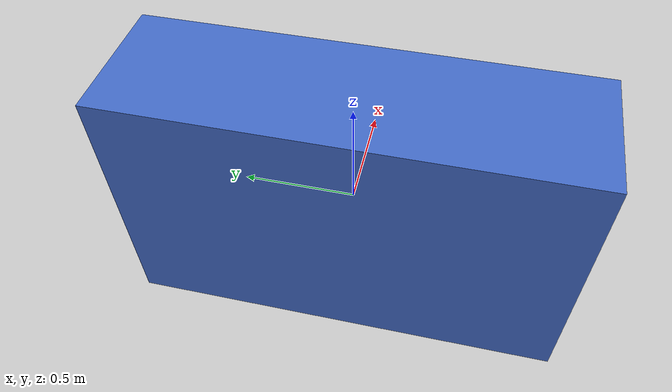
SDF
<?xml version="1.0"?>
<sdf version="1.9">
  <model name="box_obstacle">
    <static>true</static>
    <link name="obstacle_link">
      <collision name="collision">
        <geometry><box><size>0.6 2.0 1.2</size></box></geometry>
      </collision>
      <visual name="visual">
        <geometry><box><size>0.6 2.0 1.2</size></box></geometry>
        <material>
          <ambient>0.2 0.3 0.55 1</ambient>
          <diffuse>0.25 0.4 0.75 1</diffuse>
        </material>
      </visual>
    </link>
  </model>
</sdf>
